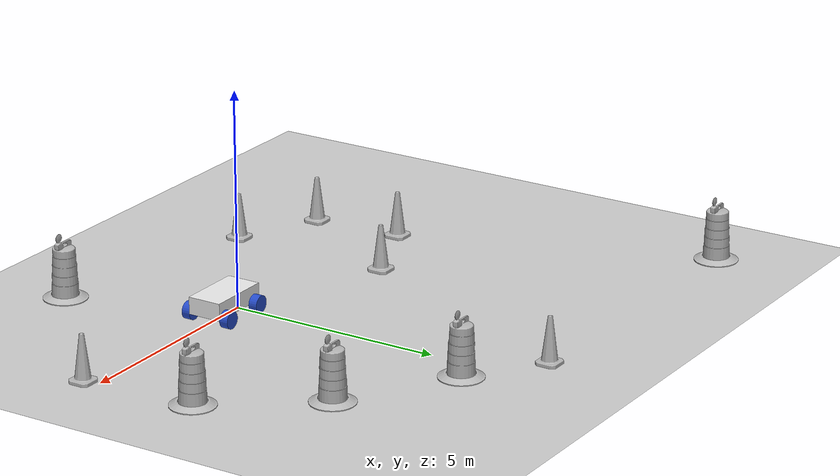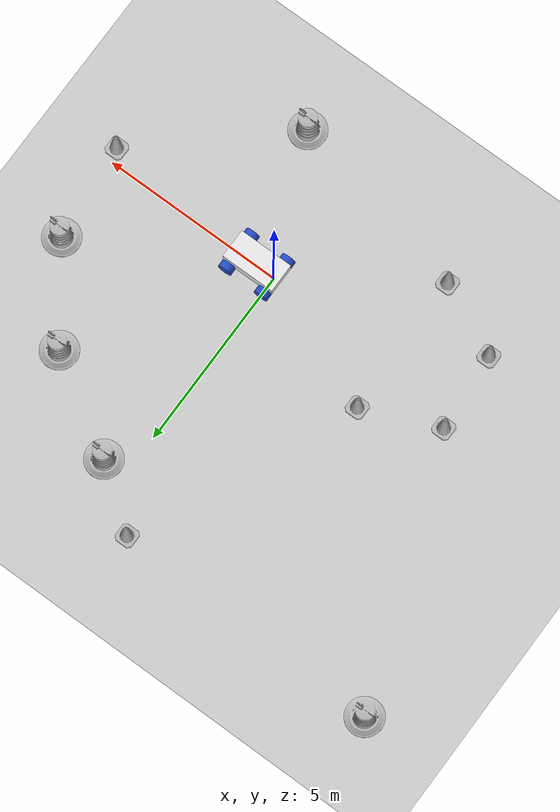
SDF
<sdf version="1.7">
 <world name="default">
  <light name="sun" type="directional">
   <pose>0 0 10 0 -0 0</pose>
   <diffuse>0.8 0.8 0.8 1</diffuse>
   <specular>0.2 0.2 0.2 1</specular>
   <attenuation>
    <range>1000</range>
    <constant>0.9</constant>
    <linear>0.01</linear>
    <quadratic>0.001</quadratic>
   </attenuation>
   <direction>-0.5 0.1 -0.9</direction>
   <spot><inner_angle>0</inner_angle><outer_angle>0</outer_angle><falloff>0</falloff></spot>
  </light>
  <model name="ground_plane">
   <static>1</static>
   <link name="link">
    <collision name="collision">
     <geometry><plane><normal>0 0 1</normal><size>100 100</size></plane></geometry>
     <surface>
      <contact><collide_bitmask>65535</collide_bitmask></contact>
      <friction><ode><mu>100</mu><mu2>50</mu2></ode></friction>
     </surface>
    </collision>
    <visual name="visual">
     <cast_shadows>0</cast_shadows>
     <geometry><plane><normal>0 0 1</normal><size>100 100</size></plane></geometry>
     <material>
      <script><uri>file://media/materials/scripts/gazebo.material</uri><name>Gazebo/Grey</name></script>
     </material>
    </visual>
   </link>
  </model>
  <gravity>0 0 -9.8</gravity>
  <magnetic_field>6e-06 2.3e-05 -4.2e-05</magnetic_field>
  <atmosphere type="adiabatic"/>
  <physics type="ode">
   <max_step_size>0.001</max_step_size>
   <real_time_factor>1</real_time_factor>
   <real_time_update_rate>1000</real_time_update_rate>
  </physics>
  <scene><ambient>0.4 0.4 0.4 1</ambient><background>0.7 0.7 0.7 1</background><shadows>1</shadows></scene>
  <audio><device>default</device></audio>
  <spherical_coordinates>
   <surface_model>EARTH_WGS84</surface_model>
   <latitude_deg>0</latitude_deg>
   <longitude_deg>0</longitude_deg>
   <elevation>0</elevation>
   <heading_deg>0</heading_deg>
  </spherical_coordinates>
  <model name="my_bot">
   <link name="base_link">
    <inertial>
     <pose>0 0 0.4 0 -0 0</pose>
     <mass>5</mass>
     <inertia><ixx>0.333333</ixx><ixy>0</ixy><ixz>0</ixz><iyy>1.00417</iyy><iyz>0</iyz><izz>1.20417</izz></inertia>
    </inertial>
    <collision name="base_link_fixed_joint_lump__chassis_collision">
     <pose>0 0 0.4 0 -0 0</pose>
     <geometry><box><size>1.5 0.8 0.4</size></box></geometry>
    </collision>
    <visual name="base_link_fixed_joint_lump__chassis_visual">
     <pose>0 0 0.4 0 -0 0</pose>
     <geometry><box><size>1.5 0.8 0.4</size></box></geometry>
     <material>
      <script><name>Gazebo/White</name><uri>file://media/materials/scripts/gazebo.material</uri></script>
     </material>
    </visual>
   </link>
   <joint name="front_left_wheel_joint" type="revolute">
    <pose relative_to="base_link">0.55 0.5 0.2 -1.5708 0 0</pose>
    <parent>base_link</parent>
    <child>front_left_wheel</child>
    <axis>
     <xyz>0 0 1</xyz>
     <limit><lower>-1e+16</lower><upper>1e+16</upper></limit>
     <dynamics><spring_reference>0</spring_reference><spring_stiffness>0</spring_stiffness></dynamics>
    </axis>
   </joint>
   <link name="front_left_wheel">
    <pose relative_to="front_left_wheel_joint">0 0 0 0 -0 0</pose>
    <inertial>
     <pose>0 0 0.2 0 -0 0</pose>
     <mass>1</mass>
     <inertia><ixx>0.0133333</ixx><ixy>0</ixy><ixz>0</ixz><iyy>0.0133333</iyy><iyz>0</iyz><izz>0.02</izz></inertia>
    </inertial>
    <collision name="front_left_wheel_collision">
     <geometry><cylinder><length>0.2</length><radius>0.2</radius></cylinder></geometry>
     <surface><friction><ode><mu>0.5</mu><mu2>0.5</mu2></ode></friction></surface>
    </collision>
    <visual name="front_left_wheel_visual">
     <geometry><cylinder><length>0.2</length><radius>0.2</radius></cylinder></geometry>
     <material>
      <script><name>Gazebo/Blue</name><uri>file://media/materials/scripts/gazebo.material</uri></script>
     </material>
    </visual>
   </link>
   <joint name="front_right_wheel_joint" type="revolute">
    <pose relative_to="base_link">0.55 -0.5 0.2 1.5708 -0 0</pose>
    <parent>base_link</parent>
    <child>front_right_wheel</child>
    <axis>
     <xyz>0 0 -1</xyz>
     <limit><lower>-1e+16</lower><upper>1e+16</upper></limit>
     <dynamics><spring_reference>0</spring_reference><spring_stiffness>0</spring_stiffness></dynamics>
    </axis>
   </joint>
   <link name="front_right_wheel">
    <pose relative_to="front_right_wheel_joint">0 0 0 0 -0 0</pose>
    <inertial>
     <pose>0 0 0.2 0 -0 0</pose>
     <mass>1</mass>
     <inertia><ixx>0.0133333</ixx><ixy>0</ixy><ixz>0</ixz><iyy>0.0133333</iyy><iyz>0</iyz><izz>0.02</izz></inertia>
    </inertial>
    <collision name="front_right_wheel_collision">
     <geometry><cylinder><length>0.2</length><radius>0.2</radius></cylinder></geometry>
     <surface><friction><ode><mu>0.5</mu><mu2>0.5</mu2></ode></friction></surface>
    </collision>
    <visual name="front_right_wheel_visual">
     <geometry><cylinder><length>0.2</length><radius>0.2</radius></cylinder></geometry>
     <material>
      <script><name>Gazebo/Blue</name><uri>file://media/materials/scripts/gazebo.material</uri></script>
     </material>
    </visual>
   </link>
   <joint name="rear_left_wheel_joint" type="revolute">
    <pose relative_to="base_link">-0.55 0.5 0.2 -1.5708 0 0</pose>
    <parent>base_link</parent>
    <child>rear_left_wheel</child>
    <axis>
     <xyz>0 0 1</xyz>
     <limit><lower>-1e+16</lower><upper>1e+16</upper></limit>
     <dynamics><spring_reference>0</spring_reference><spring_stiffness>0</spring_stiffness></dynamics>
    </axis>
   </joint>
   <link name="rear_left_wheel">
    <pose relative_to="rear_left_wheel_joint">0 0 0 0 -0 0</pose>
    <inertial>
     <pose>0 0 0.2 0 -0 0</pose>
     <mass>1</mass>
     <inertia><ixx>0.0133333</ixx><ixy>0</ixy><ixz>0</ixz><iyy>0.0133333</iyy><iyz>0</iyz><izz>0.02</izz></inertia>
    </inertial>
    <collision name="rear_left_wheel_collision">
     <geometry><cylinder><length>0.2</length><radius>0.2</radius></cylinder></geometry>
     <surface><friction><ode><mu>0.5</mu><mu2>0.5</mu2></ode></friction></surface>
    </collision>
    <visual name="rear_left_wheel_visual">
     <geometry><cylinder><length>0.2</length><radius>0.2</radius></cylinder></geometry>
     <material>
      <script><name>Gazebo/Blue</name><uri>file://media/materials/scripts/gazebo.material</uri></script>
     </material>
    </visual>
   </link>
   <joint name="rear_right_wheel_joint" type="revolute">
    <pose relative_to="base_link">-0.55 -0.5 0.2 1.5708 -0 0</pose>
    <parent>base_link</parent>
    <child>rear_right_wheel</child>
    <axis>
     <xyz>0 0 -1</xyz>
     <limit><lower>-1e+16</lower><upper>1e+16</upper></limit>
     <dynamics><spring_reference>0</spring_reference><spring_stiffness>0</spring_stiffness></dynamics>
    </axis>
   </joint>
   <link name="rear_right_wheel">
    <pose relative_to="rear_right_wheel_joint">0 0 0 0 -0 0</pose>
    <inertial>
     <pose>0 0 0.2 0 -0 0</pose>
     <mass>1</mass>
     <inertia><ixx>0.0133333</ixx><ixy>0</ixy><ixz>0</ixz><iyy>0.0133333</iyy><iyz>0</iyz><izz>0.02</izz></inertia>
    </inertial>
    <collision name="rear_right_wheel_collision">
     <geometry><cylinder><length>0.2</length><radius>0.2</radius></cylinder></geometry>
     <surface><friction><ode><mu>0.5</mu><mu2>0.5</mu2></ode></friction></surface>
    </collision>
    <visual name="rear_right_wheel_visual">
     <geometry><cylinder><length>0.2</length><radius>0.2</radius></cylinder></geometry>
     <material>
      <script><name>Gazebo/Blue</name><uri>file://media/materials/scripts/gazebo.material</uri></script>
     </material>
    </visual>
   </link>
   <static>0</static>
   <plugin name="diff_drive" filename="libgazebo_ros_diff_drive.so">
    <num_wheel_pairs>2</num_wheel_pairs>
    <left_joint>front_left_wheel_joint</left_joint>
    <left_joint>rear_left_wheel_joint</left_joint>
    <right_joint>front_right_wheel_joint</right_joint>
    <right_joint>rear_right_wheel_joint</right_joint>
    <wheel_separation>1</wheel_separation>
    <wheel_diameter>0.4</wheel_diameter>
    <max_wheel_torque>200</max_wheel_torque>
    <max_wheel_acceleration>10.0</max_wheel_acceleration>
    <odometry_frame>odom</odometry_frame>
    <robot_base_frame>base_link</robot_base_frame>
    <publish_odom>1</publish_odom>
    <publish_odom_tf>1</publish_odom_tf>
    <publish_wheel_tf>1</publish_wheel_tf>
   </plugin>
   <pose>0.523926 5.7e-05 -2e-06 0 -4e-06 0.000159</pose>
  </model>
  <model name="ball_bearing">
   <link name="link">
    <pose>0 0 0.003 0 -0 0</pose>
    <inertial>
     <mass>0.0011</mass>
     <inertia>
      <ixx>3.96e-09</ixx>
      <ixy>0</ixy>
      <ixz>0</ixz>
      <iyy>3.96e-09</iyy>
      <iyz>0</iyz>
      <izz>3.96e-09</izz>
     </inertia>
    </inertial>
    <collision name="collision">
     <geometry><sphere><radius>0.003</radius></sphere></geometry>
     <surface>
      <contact>
       <poissons_ratio>0.305</poissons_ratio>
       <elastic_modulus>2e+11</elastic_modulus>
       <ode><kp>100000</kp><kd>100</kd><max_vel>100</max_vel><min_depth>0.001</min_depth></ode>
      </contact>
      <friction>
       <torsional>
        <coefficient>1</coefficient>
        <use_patch_radius>0</use_patch_radius>
        <surface_radius>0.01</surface_radius>
       </torsional>
      </friction>
     </surface>
    </collision>
    <visual name="visual">
     <geometry><sphere><radius>0.003</radius></sphere></geometry>
     <material>
      <script><uri>file://media/materials/scripts/gazebo.material</uri><name>Gazebo/Grey</name></script>
     </material>
    </visual>
    <velocity_decay><linear>0</linear><angular>0.005</angular></velocity_decay>
   </link>
   <pose>-0.056997 -3.46456 0 0 -0 0</pose>
  </model>
  <model name="Construction Cone">
   <link name="link">
    <collision name="collision">
     <geometry>
      <mesh><scale>10 10 10</scale><uri>model://construction_cone/meshes/construction_cone.dae</uri></mesh>
     </geometry>
    </collision>
    <visual name="visual">
     <geometry>
      <mesh><scale>10 10 10</scale><uri>model://construction_cone/meshes/construction_cone.dae</uri></mesh>
     </geometry>
    </visual>
    <inertial>
     <inertia><ixx>1</ixx><ixy>0</ixy><ixz>0</ixz><iyy>1</iyy><iyz>0</iyz><izz>1</izz></inertia>
     <mass>1</mass>
    </inertial>
   </link>
   <pose>-3.53767 -2.44366 0 0 -0 0</pose>
  </model>
  <model name="Construction Barrel">
   <link name="link">
    <inertial>
     <pose>0 0 0.4 0 -0 0</pose>
     <mass>500</mass>
     <inertia><ixx>51.2096</ixx><iyy>51.2096</iyy><izz>25</izz><ixy>0</ixy><ixz>0</ixz><iyz>0</iyz></inertia>
    </inertial>
    <collision name="collision">
     <geometry><mesh><uri>model://construction_barrel/meshes/construction_barrel.dae</uri></mesh></geometry>
    </collision>
    <visual name="visual">
     <geometry><mesh><uri>model://construction_barrel/meshes/construction_barrel.dae</uri></mesh></geometry>
    </visual>
   </link>
   <pose>1.56672 -3.55811 0 0 -0 0</pose>
  </model>
  <model name="Construction Cone_0">
   <link name="link">
    <collision name="collision">
     <geometry>
      <mesh><scale>10 10 10</scale><uri>model://construction_cone/meshes/construction_cone.dae</uri></mesh>
     </geometry>
    </collision>
    <visual name="visual">
     <geometry>
      <mesh><scale>10 10 10</scale><uri>model://construction_cone/meshes/construction_cone.dae</uri></mesh>
     </geometry>
    </visual>
    <inertial>
     <inertia><ixx>1</ixx><ixy>0</ixy><ixz>0</ixz><iyy>1</iyy><iyz>0</iyz><izz>1</izz></inertia>
     <mass>1</mass>
    </inertial>
   </link>
   <pose>-5.43874 -1.54768 0 0 -0 0</pose>
  </model>
  <model name="Construction Cone_1">
   <link name="link">
    <collision name="collision">
     <geometry>
      <mesh><scale>10 10 10</scale><uri>model://construction_cone/meshes/construction_cone.dae</uri></mesh>
     </geometry>
    </collision>
    <visual name="visual">
     <geometry>
      <mesh><scale>10 10 10</scale><uri>model://construction_cone/meshes/construction_cone.dae</uri></mesh>
     </geometry>
    </visual>
    <inertial>
     <inertia><ixx>1</ixx><ixy>0</ixy><ixz>0</ixz><iyy>1</iyy><iyz>0</iyz><izz>1</izz></inertia>
     <mass>1</mass>
    </inertial>
   </link>
   <pose>-5.60619 0.575836 0 0 -0 0</pose>
  </model>
  <model name="Construction Cone_2">
   <link name="link">
    <collision name="collision">
     <geometry>
      <mesh><scale>10 10 10</scale><uri>model://construction_cone/meshes/construction_cone.dae</uri></mesh>
     </geometry>
    </collision>
    <visual name="visual">
     <geometry>
      <mesh><scale>10 10 10</scale><uri>model://construction_cone/meshes/construction_cone.dae</uri></mesh>
     </geometry>
    </visual>
    <inertial>
     <inertia><ixx>1</ixx><ixy>0</ixy><ixz>0</ixz><iyy>1</iyy><iyz>0</iyz><izz>1</izz></inertia>
     <mass>1</mass>
    </inertial>
   </link>
   <pose>-3.58766 1.41507 0 0 -0 0</pose>
  </model>
  <model name="Construction Cone_3">
   <link name="link">
    <collision name="collision">
     <geometry>
      <mesh><scale>10 10 10</scale><uri>model://construction_cone/meshes/construction_cone.dae</uri></mesh>
     </geometry>
    </collision>
    <visual name="visual">
     <geometry>
      <mesh><scale>10 10 10</scale><uri>model://construction_cone/meshes/construction_cone.dae</uri></mesh>
     </geometry>
    </visual>
    <inertial>
     <inertia><ixx>1</ixx><ixy>0</ixy><ixz>0</ixz><iyy>1</iyy><iyz>0</iyz><izz>1</izz></inertia>
     <mass>1</mass>
    </inertial>
   </link>
   <pose>-0.94303 7.33807 0 0 -0 0</pose>
  </model>
  <model name="Construction Barrel_0">
   <link name="link">
    <inertial>
     <pose>0 0 0.4 0 -0 0</pose>
     <mass>500</mass>
     <inertia><ixx>51.2096</ixx><iyy>51.2096</iyy><izz>25</izz><ixy>0</ixy><ixz>0</ixz><iyz>0</iyz></inertia>
    </inertial>
    <collision name="collision">
     <geometry><mesh><uri>model://construction_barrel/meshes/construction_barrel.dae</uri></mesh></geometry>
    </collision>
    <visual name="visual">
     <geometry><mesh><uri>model://construction_barrel/meshes/construction_barrel.dae</uri></mesh></geometry>
    </visual>
   </link>
   <pose>0.661824 6.14078 0 0 -0 0</pose>
  </model>
  <model name="Construction Barrel_1">
   <link name="link">
    <inertial>
     <pose>0 0 0.4 0 -0 0</pose>
     <mass>500</mass>
     <inertia><ixx>51.2096</ixx><iyy>51.2096</iyy><izz>25</izz><ixy>0</ixy><ixz>0</ixz><iyz>0</iyz></inertia>
    </inertial>
    <collision name="collision">
     <geometry><mesh><uri>model://construction_barrel/meshes/construction_barrel.dae</uri></mesh></geometry>
    </collision>
    <visual name="visual">
     <geometry><mesh><uri>model://construction_barrel/meshes/construction_barrel.dae</uri></mesh></geometry>
    </visual>
   </link>
   <pose>3.18621 4.59826 0 0 -0 0</pose>
  </model>
  <model name="Construction Barrel_2">
   <link name="link">
    <inertial>
     <pose>0 0 0.4 0 -0 0</pose>
     <mass>500</mass>
     <inertia><ixx>51.2096</ixx><iyy>51.2096</iyy><izz>25</izz><ixy>0</ixy><ixz>0</ixz><iyz>0</iyz></inertia>
    </inertial>
    <collision name="collision">
     <geometry><mesh><uri>model://construction_barrel/meshes/construction_barrel.dae</uri></mesh></geometry>
    </collision>
    <visual name="visual">
     <geometry><mesh><uri>model://construction_barrel/meshes/construction_barrel.dae</uri></mesh></geometry>
    </visual>
   </link>
   <pose>4.86184 2.27096 0 0 -0 0</pose>
  </model>
  <model name="Construction Barrel_3">
   <link name="link">
    <inertial>
     <pose>0 0 0.4 0 -0 0</pose>
     <mass>500</mass>
     <inertia><ixx>51.2096</ixx><iyy>51.2096</iyy><izz>25</izz><ixy>0</ixy><ixz>0</ixz><iyz>0</iyz></inertia>
    </inertial>
    <collision name="collision">
     <geometry><mesh><uri>model://construction_barrel/meshes/construction_barrel.dae</uri></mesh></geometry>
    </collision>
    <visual name="visual">
     <geometry><mesh><uri>model://construction_barrel/meshes/construction_barrel.dae</uri></mesh></geometry>
    </visual>
   </link>
   <pose>-8.24348 7.4929 0 0 -0 0</pose>
  </model>
  <model name="Construction Cone_4">
   <link name="link">
    <collision name="collision">
     <geometry>
      <mesh><scale>10 10 10</scale><uri>model://construction_cone/meshes/construction_cone.dae</uri></mesh>
     </geometry>
    </collision>
    <visual name="visual">
     <geometry>
      <mesh><scale>10 10 10</scale><uri>model://construction_cone/meshes/construction_cone.dae</uri></mesh>
     </geometry>
    </visual>
    <inertial>
     <inertia><ixx>1</ixx><ixy>0</ixy><ixz>0</ixz><iyy>1</iyy><iyz>0</iyz><izz>1</izz></inertia>
     <mass>1</mass>
    </inertial>
   </link>
   <pose>5.11129 -0.355716 0 0 -0 0</pose>
  </model>
 </world>
</sdf>
